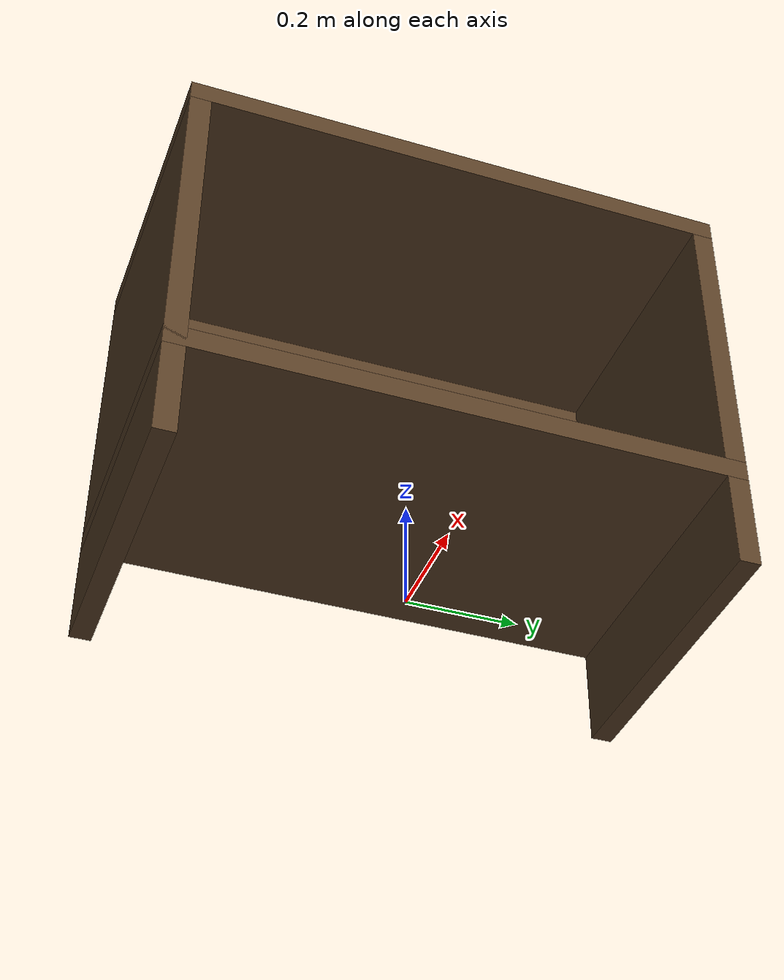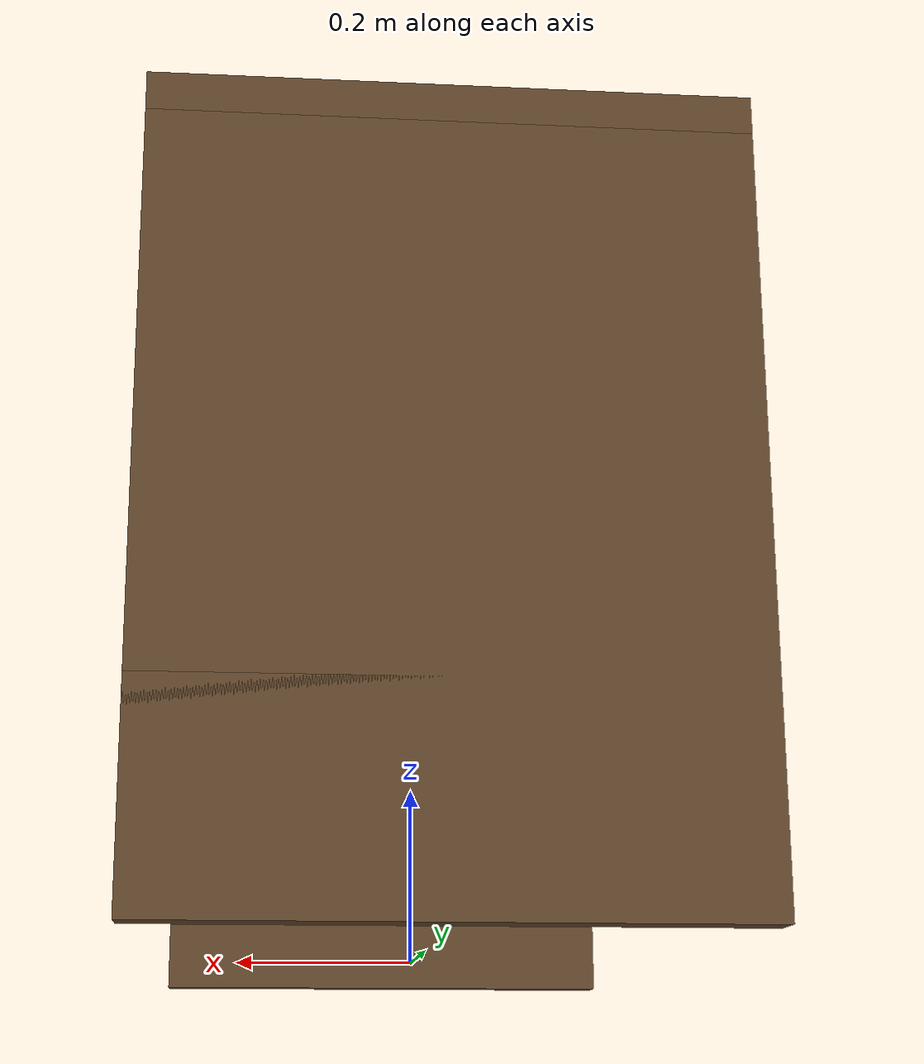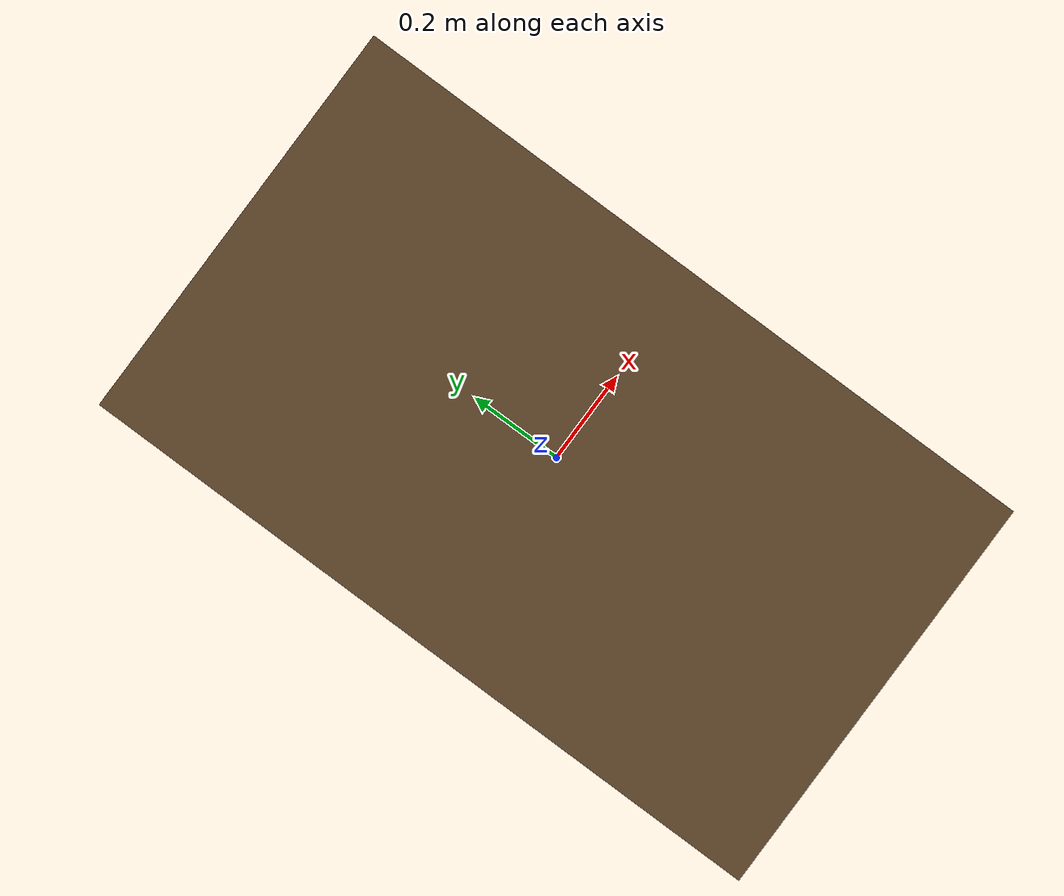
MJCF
<mujoco model="cabinet_open">
  <compiler angle="radian"/>

  <asset>
    <texture type="2d" name="tex_cabinet_open" file="light_wood_v3.png" />
    <material name="mat_cabinet_open" texture="tex_cabinet_open" specular="0.5" shininess="0.5" rgba="0.5 0.5 0.5 1" />
  </asset>

  <worldbody>
    <body name="body_cabinet_open" pos="0 0 0">
      <!-- Cabinet body  -->
      <geom type="box" size="0.3 0.52 0.02" pos="0.0 0.0 0.2" material="mat_cabinet_open" />
      <geom type="box" size="0.3 0.52 0.02" pos="0.0 0.0 0.8" material="mat_cabinet_open" />
      <geom type="box" size="0.02 0.5 0.3" pos="-0.28 0.0 0.5" material="mat_cabinet_open" />
      <geom type="box" size="0.3 0.02 0.4" pos="0.0 0.5 0.4" material="mat_cabinet_open" />
      <geom type="box" size="0.3 0.02 0.4" pos="0.0 -0.5 0.4" material="mat_cabinet_open" />

      <!-- Cabinet door -->
      </body>
  </worldbody>

</mujoco>
